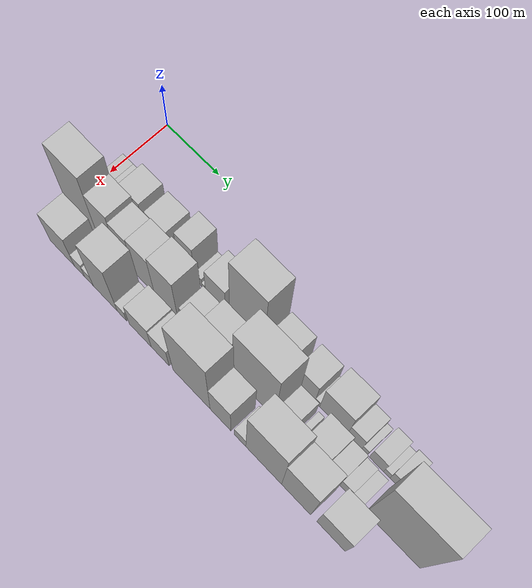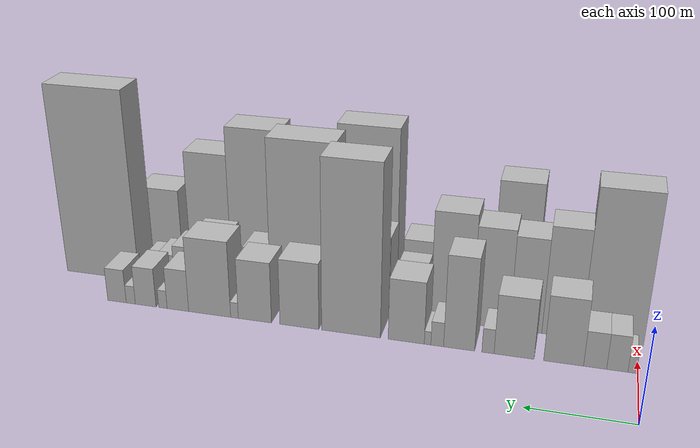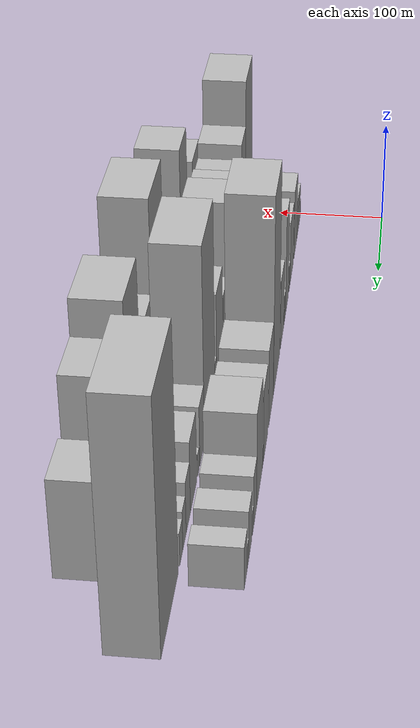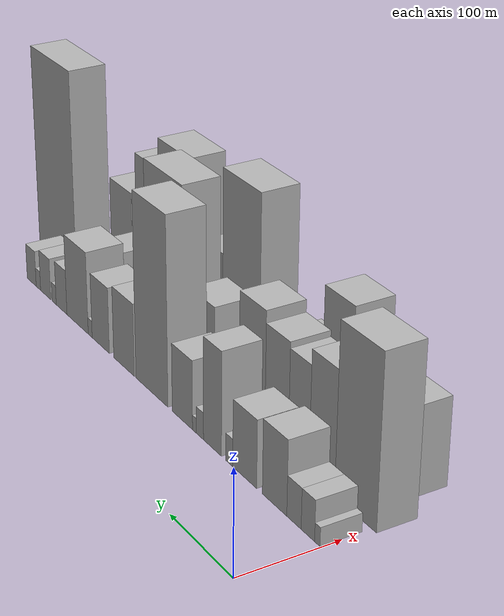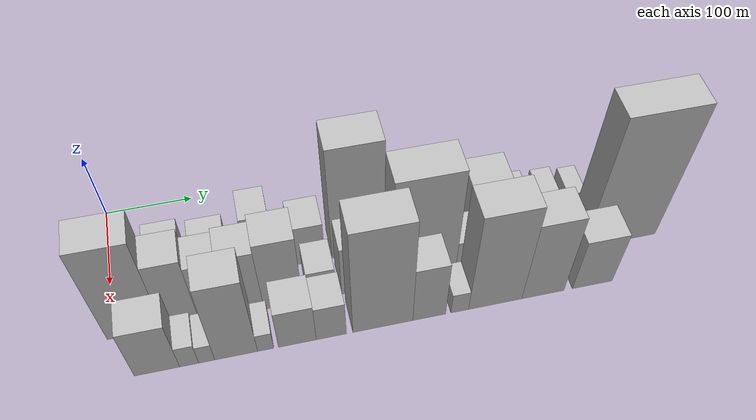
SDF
<sdf version="1.6">
 <world name="default">
  <model name="building_19">
   <static>1</static>
   <pose>100.0000 5.1420 0 0.000000 0.000000 0.000000</pose>
   <link name="link">
    <pose>0 0 9.00 0 0 0</pose>
    <collision name="collision"><geometry><box><size>40.0000 7.8285 18.0000</size></box></geometry></collision>
    <visual name="visual">
     <cast_shadows>0</cast_shadows>
     <geometry><box><size>40.0000 7.8285 18.0000</size></box></geometry>
     <material>
      <script>
       <uri>model://HANNAS_wall/materials/scripts</uri>
       <uri>model://HANNAS_wall/materials/textures</uri>
       <name>vrc/HANNAS_wall</name>
      </script>
     </material>
    </visual>
   </link>
  </model>
  <model name="building_20">
   <static>1</static>
   <pose>100.0000 18.8325 0 0.000000 0.000000 0.000000</pose>
   <link name="link">
    <pose>0 0 19.50 0 0 0</pose>
    <collision name="collision"><geometry><box><size>40.0000 19.5526 39.0000</size></box></geometry></collision>
    <visual name="visual">
     <cast_shadows>0</cast_shadows>
     <geometry><box><size>40.0000 19.5526 39.0000</size></box></geometry>
     <material>
      <script>
       <uri>model://HANNAS_wall/materials/scripts</uri>
       <uri>model://HANNAS_wall/materials/textures</uri>
       <name>vrc/HANNAS_wall</name>
      </script>
     </material>
    </visual>
   </link>
  </model>
  <model name="building_21">
   <static>1</static>
   <pose>100.0000 39.2823 0 0.000000 0.000000 0.000000</pose>
   <link name="link">
    <pose>0 0 19.50 0 0 0</pose>
    <collision name="collision"><geometry><box><size>40.0000 21.3469 39.0000</size></box></geometry></collision>
    <visual name="visual">
     <cast_shadows>0</cast_shadows>
     <geometry><box><size>40.0000 21.3469 39.0000</size></box></geometry>
     <material>
      <script>
       <uri>model://HANNAS_wall/materials/scripts</uri>
       <uri>model://HANNAS_wall/materials/textures</uri>
       <name>vrc/HANNAS_wall</name>
      </script>
     </material>
    </visual>
   </link>
  </model>
  <model name="building_22">
   <static>1</static>
   <pose>100.0000 68.7046 0 0.000000 0.000000 0.000000</pose>
   <link name="link">
    <pose>0 0 36.00 0 0 0</pose>
    <collision name="collision"><geometry><box><size>40.0000 37.4976 72.0000</size></box></geometry></collision>
    <visual name="visual">
     <cast_shadows>0</cast_shadows>
     <geometry><box><size>40.0000 37.4976 72.0000</size></box></geometry>
     <material>
      <script>
       <uri>model://HANNAS_wall/materials/scripts</uri>
       <uri>model://HANNAS_wall/materials/textures</uri>
       <name>vrc/HANNAS_wall</name>
      </script>
     </material>
    </visual>
   </link>
  </model>
  <model name="building_23">
   <static>1</static>
   <pose>100.0000 115.7143 0 0.000000 0.000000 0.000000</pose>
   <link name="link">
    <pose>0 0 33.00 0 0 0</pose>
    <collision name="collision"><geometry><box><size>40.0000 38.5218 66.0000</size></box></geometry></collision>
    <visual name="visual">
     <cast_shadows>0</cast_shadows>
     <geometry><box><size>40.0000 38.5218 66.0000</size></box></geometry>
     <material>
      <script>
       <uri>model://HANNAS_wall/materials/scripts</uri>
       <uri>model://HANNAS_wall/materials/textures</uri>
       <name>vrc/HANNAS_wall</name>
      </script>
     </material>
    </visual>
   </link>
  </model>
  <model name="building_24">
   <static>1</static>
   <pose>100.0000 140.9108 0 0.000000 0.000000 0.000000</pose>
   <link name="link">
    <pose>0 0 13.50 0 0 0</pose>
    <collision name="collision"><geometry><box><size>40.0000 11.8714 27.0000</size></box></geometry></collision>
    <visual name="visual">
     <cast_shadows>0</cast_shadows>
     <geometry><box><size>40.0000 11.8714 27.0000</size></box></geometry>
     <material>
      <script>
       <uri>model://HANNAS_wall/materials/scripts</uri>
       <uri>model://HANNAS_wall/materials/textures</uri>
       <name>vrc/HANNAS_wall</name>
      </script>
     </material>
    </visual>
   </link>
  </model>
  <model name="building_25">
   <static>1</static>
   <pose>100.0000 169.1480 0 0.000000 0.000000 0.000000</pose>
   <link name="link">
    <pose>0 0 51.00 0 0 0</pose>
    <collision name="collision"><geometry><box><size>40.0000 30.6031 102.0000</size></box></geometry></collision>
    <visual name="visual">
     <cast_shadows>0</cast_shadows>
     <geometry><box><size>40.0000 30.6031 102.0000</size></box></geometry>
     <material>
      <script>
       <uri>model://HANNAS_wall/materials/scripts</uri>
       <uri>model://HANNAS_wall/materials/textures</uri>
       <name>vrc/HANNAS_wall</name>
      </script>
     </material>
    </visual>
   </link>
  </model>
  <model name="building_26">
   <static>1</static>
   <pose>100.0000 190.7650 0 0.000000 0.000000 0.000000</pose>
   <link name="link">
    <pose>0 0 13.50 0 0 0</pose>
    <collision name="collision"><geometry><box><size>40.0000 12.6308 27.0000</size></box></geometry></collision>
    <visual name="visual">
     <cast_shadows>0</cast_shadows>
     <geometry><box><size>40.0000 12.6308 27.0000</size></box></geometry>
     <material>
      <script>
       <uri>model://HANNAS_wall/materials/scripts</uri>
       <uri>model://HANNAS_wall/materials/textures</uri>
       <name>vrc/HANNAS_wall</name>
      </script>
     </material>
    </visual>
   </link>
  </model>
  <model name="building_27">
   <static>1</static>
   <pose>100.0000 200.3613 0 0.000000 0.000000 0.000000</pose>
   <link name="link">
    <pose>0 0 7.50 0 0 0</pose>
    <collision name="collision"><geometry><box><size>40.0000 6.5619 15.0000</size></box></geometry></collision>
    <visual name="visual">
     <cast_shadows>0</cast_shadows>
     <geometry><box><size>40.0000 6.5619 15.0000</size></box></geometry>
     <material>
      <script>
       <uri>model://HANNAS_wall/materials/scripts</uri>
       <uri>model://HANNAS_wall/materials/textures</uri>
       <name>vrc/HANNAS_wall</name>
      </script>
     </material>
    </visual>
   </link>
  </model>
  <model name="building_28">
   <static>1</static>
   <pose>100.0000 221.8432 0 0.000000 0.000000 0.000000</pose>
   <link name="link">
    <pose>0 0 34.50 0 0 0</pose>
    <collision name="collision"><geometry><box><size>40.0000 36.4018 69.0000</size></box></geometry></collision>
    <visual name="visual">
     <cast_shadows>0</cast_shadows>
     <geometry><box><size>40.0000 36.4018 69.0000</size></box></geometry>
     <material>
      <script>
       <uri>model://HANNAS_wall/materials/scripts</uri>
       <uri>model://HANNAS_wall/materials/textures</uri>
       <name>vrc/HANNAS_wall</name>
      </script>
     </material>
    </visual>
   </link>
  </model>
  <model name="building_29">
   <static>1</static>
   <pose>100.0000 278.4300 0 0.000000 0.000000 0.000000</pose>
   <link name="link">
    <pose>0 0 94.50 0 0 0</pose>
    <collision name="collision"><geometry><box><size>40.0000 60.7719 189.0000</size></box></geometry></collision>
    <visual name="visual">
     <cast_shadows>0</cast_shadows>
     <geometry><box><size>40.0000 60.7719 189.0000</size></box></geometry>
     <material>
      <script>
       <uri>model://HANNAS_wall/materials/scripts</uri>
       <uri>model://HANNAS_wall/materials/textures</uri>
       <name>vrc/HANNAS_wall</name>
      </script>
     </material>
    </visual>
   </link>
  </model>
  <model name="building_30">
   <static>1</static>
   <pose>100.0000 332.4769 0 0.000000 0.000000 0.000000</pose>
   <link name="link">
    <pose>0 0 37.50 0 0 0</pose>
    <collision name="collision"><geometry><box><size>40.0000 41.3220 75.0000</size></box></geometry></collision>
    <visual name="visual">
     <cast_shadows>0</cast_shadows>
     <geometry><box><size>40.0000 41.3220 75.0000</size></box></geometry>
     <material>
      <script>
       <uri>model://HANNAS_wall/materials/scripts</uri>
       <uri>model://HANNAS_wall/materials/textures</uri>
       <name>vrc/HANNAS_wall</name>
      </script>
     </material>
    </visual>
   </link>
  </model>
  <model name="building_31">
   <static>1</static>
   <pose>100.0000 380.1412 0 0.000000 0.000000 0.000000</pose>
   <link name="link">
    <pose>0 0 34.50 0 0 0</pose>
    <collision name="collision"><geometry><box><size>40.0000 36.0065 69.0000</size></box></geometry></collision>
    <visual name="visual">
     <cast_shadows>0</cast_shadows>
     <geometry><box><size>40.0000 36.0065 69.0000</size></box></geometry>
     <material>
      <script>
       <uri>model://HANNAS_wall/materials/scripts</uri>
       <uri>model://HANNAS_wall/materials/textures</uri>
       <name>vrc/HANNAS_wall</name>
      </script>
     </material>
    </visual>
   </link>
  </model>
  <model name="building_32">
   <static>1</static>
   <pose>100.0000 402.3121 0 0.000000 0.000000 0.000000</pose>
   <link name="link">
    <pose>0 0 9.00 0 0 0</pose>
    <collision name="collision"><geometry><box><size>40.0000 8.3354 18.0000</size></box></geometry></collision>
    <visual name="visual">
     <cast_shadows>0</cast_shadows>
     <geometry><box><size>40.0000 8.3354 18.0000</size></box></geometry>
     <material>
      <script>
       <uri>model://HANNAS_wall/materials/scripts</uri>
       <uri>model://HANNAS_wall/materials/textures</uri>
       <name>vrc/HANNAS_wall</name>
      </script>
     </material>
    </visual>
   </link>
  </model>
  <model name="building_33">
   <static>1</static>
   <pose>100.0000 429.7398 0 0.000000 0.000000 0.000000</pose>
   <link name="link">
    <pose>0 0 43.50 0 0 0</pose>
    <collision name="collision"><geometry><box><size>40.0000 46.5200 87.0000</size></box></geometry></collision>
    <visual name="visual">
     <cast_shadows>0</cast_shadows>
     <geometry><box><size>40.0000 46.5200 87.0000</size></box></geometry>
     <material>
      <script>
       <uri>model://HANNAS_wall/materials/scripts</uri>
       <uri>model://HANNAS_wall/materials/textures</uri>
       <name>vrc/HANNAS_wall</name>
      </script>
     </material>
    </visual>
   </link>
  </model>
  <model name="building_34">
   <static>1</static>
   <pose>100.0000 465.1372 0 0.000000 0.000000 0.000000</pose>
   <link name="link">
    <pose>0 0 24.00 0 0 0</pose>
    <collision name="collision"><geometry><box><size>40.0000 24.2748 48.0000</size></box></geometry></collision>
    <visual name="visual">
     <cast_shadows>0</cast_shadows>
     <geometry><box><size>40.0000 24.2748 48.0000</size></box></geometry>
     <material>
      <script>
       <uri>model://HANNAS_wall/materials/scripts</uri>
       <uri>model://HANNAS_wall/materials/textures</uri>
       <name>vrc/HANNAS_wall</name>
      </script>
     </material>
    </visual>
   </link>
  </model>
  <model name="building_35">
   <static>1</static>
   <pose>100.0000 482.0341 0 0.000000 0.000000 0.000000</pose>
   <link name="link">
    <pose>0 0 10.50 0 0 0</pose>
    <collision name="collision"><geometry><box><size>40.0000 9.5189 21.0000</size></box></geometry></collision>
    <visual name="visual">
     <cast_shadows>0</cast_shadows>
     <geometry><box><size>40.0000 9.5189 21.0000</size></box></geometry>
     <material>
      <script>
       <uri>model://HANNAS_wall/materials/scripts</uri>
       <uri>model://HANNAS_wall/materials/textures</uri>
       <name>vrc/HANNAS_wall</name>
      </script>
     </material>
    </visual>
   </link>
  </model>
  <model name="building_36">
   <static>1</static>
   <pose>100.0000 501.6301 0 0.000000 0.000000 0.000000</pose>
   <link name="link">
    <pose>0 0 22.50 0 0 0</pose>
    <collision name="collision"><geometry><box><size>40.0000 23.6731 45.0000</size></box></geometry></collision>
    <visual name="visual">
     <cast_shadows>0</cast_shadows>
     <geometry><box><size>40.0000 23.6731 45.0000</size></box></geometry>
     <material>
      <script>
       <uri>model://HANNAS_wall/materials/scripts</uri>
       <uri>model://HANNAS_wall/materials/textures</uri>
       <name>vrc/HANNAS_wall</name>
      </script>
     </material>
    </visual>
   </link>
  </model>
  <model name="building_37">
   <static>1</static>
   <pose>100.0000 518.7028 0 0.000000 0.000000 0.000000</pose>
   <link name="link">
    <pose>0 0 10.50 0 0 0</pose>
    <collision name="collision"><geometry><box><size>40.0000 10.4723 21.0000</size></box></geometry></collision>
    <visual name="visual">
     <cast_shadows>0</cast_shadows>
     <geometry><box><size>40.0000 10.4723 21.0000</size></box></geometry>
     <material>
      <script>
       <uri>model://HANNAS_wall/materials/scripts</uri>
       <uri>model://HANNAS_wall/materials/textures</uri>
       <name>vrc/HANNAS_wall</name>
      </script>
     </material>
    </visual>
   </link>
  </model>
  <model name="building_38">
   <static>1</static>
   <pose>100.0000 534.6236 0 0.000000 0.000000 0.000000</pose>
   <link name="link">
    <pose>0 0 19.50 0 0 0</pose>
    <collision name="collision"><geometry><box><size>40.0000 21.3694 39.0000</size></box></geometry></collision>
    <visual name="visual">
     <cast_shadows>0</cast_shadows>
     <geometry><box><size>40.0000 21.3694 39.0000</size></box></geometry>
     <material>
      <script>
       <uri>model://HANNAS_wall/materials/scripts</uri>
       <uri>model://HANNAS_wall/materials/textures</uri>
       <name>vrc/HANNAS_wall</name>
      </script>
     </material>
    </visual>
   </link>
  </model>
  <model name="building_53">
   <static>1</static>
   <pose>149.0000 24.1453 0 0.000000 0.000000 0.000000</pose>
   <link name="link">
    <pose>0 0 82.50 0 0 0</pose>
    <collision name="collision"><geometry><box><size>40.0000 59.8403 165.0000</size></box></geometry></collision>
    <visual name="visual">
     <cast_shadows>0</cast_shadows>
     <geometry><box><size>40.0000 59.8403 165.0000</size></box></geometry>
     <material>
      <script>
       <uri>model://HANNAS_wall/materials/scripts</uri>
       <uri>model://HANNAS_wall/materials/textures</uri>
       <name>vrc/HANNAS_wall</name>
      </script>
     </material>
    </visual>
   </link>
  </model>
  <model name="building_54">
   <static>1</static>
   <pose>149.0000 73.3788 0 0.000000 0.000000 0.000000</pose>
   <link name="link">
    <pose>0 0 60.00 0 0 0</pose>
    <collision name="collision"><geometry><box><size>40.0000 38.6266 120.0000</size></box></geometry></collision>
    <visual name="visual">
     <cast_shadows>0</cast_shadows>
     <geometry><box><size>40.0000 38.6266 120.0000</size></box></geometry>
     <material>
      <script>
       <uri>model://HANNAS_wall/materials/scripts</uri>
       <uri>model://HANNAS_wall/materials/textures</uri>
       <name>vrc/HANNAS_wall</name>
      </script>
     </material>
    </visual>
   </link>
  </model>
  <model name="building_55">
   <static>1</static>
   <pose>149.0000 108.8950 0 0.000000 0.000000 0.000000</pose>
   <link name="link">
    <pose>0 0 52.50 0 0 0</pose>
    <collision name="collision"><geometry><box><size>40.0000 32.4059 105.0000</size></box></geometry></collision>
    <visual name="visual">
     <cast_shadows>0</cast_shadows>
     <geometry><box><size>40.0000 32.4059 105.0000</size></box></geometry>
     <material>
      <script>
       <uri>model://HANNAS_wall/materials/scripts</uri>
       <uri>model://HANNAS_wall/materials/textures</uri>
       <name>vrc/HANNAS_wall</name>
      </script>
     </material>
    </visual>
   </link>
  </model>
  <model name="building_56">
   <static>1</static>
   <pose>149.0000 144.0499 0 0.000000 0.000000 0.000000</pose>
   <link name="link">
    <pose>0 0 55.50 0 0 0</pose>
    <collision name="collision"><geometry><box><size>40.0000 37.9039 111.0000</size></box></geometry></collision>
    <visual name="visual">
     <cast_shadows>0</cast_shadows>
     <geometry><box><size>40.0000 37.9039 111.0000</size></box></geometry>
     <material>
      <script>
       <uri>model://HANNAS_wall/materials/scripts</uri>
       <uri>model://HANNAS_wall/materials/textures</uri>
       <name>vrc/HANNAS_wall</name>
      </script>
     </material>
    </visual>
   </link>
  </model>
  <model name="building_57">
   <static>1</static>
   <pose>149.0000 184.5599 0 0.000000 0.000000 0.000000</pose>
   <link name="link">
    <pose>0 0 61.50 0 0 0</pose>
    <collision name="collision"><geometry><box><size>40.0000 43.1160 123.0000</size></box></geometry></collision>
    <visual name="visual">
     <cast_shadows>0</cast_shadows>
     <geometry><box><size>40.0000 43.1160 123.0000</size></box></geometry>
     <material>
      <script>
       <uri>model://HANNAS_wall/materials/scripts</uri>
       <uri>model://HANNAS_wall/materials/textures</uri>
       <name>vrc/HANNAS_wall</name>
      </script>
     </material>
    </visual>
   </link>
  </model>
  <model name="building_58">
   <static>1</static>
   <pose>149.0000 227.6423 0 0.000000 0.000000 0.000000</pose>
   <link name="link">
    <pose>0 0 27.00 0 0 0</pose>
    <collision name="collision"><geometry><box><size>40.0000 31.0489 54.0000</size></box></geometry></collision>
    <visual name="visual">
     <cast_shadows>0</cast_shadows>
     <geometry><box><size>40.0000 31.0489 54.0000</size></box></geometry>
     <material>
      <script>
       <uri>model://HANNAS_wall/materials/scripts</uri>
       <uri>model://HANNAS_wall/materials/textures</uri>
       <name>vrc/HANNAS_wall</name>
      </script>
     </material>
    </visual>
   </link>
  </model>
  <model name="building_59">
   <static>1</static>
   <pose>149.0000 272.0626 0 0.000000 0.000000 0.000000</pose>
   <link name="link">
    <pose>0 0 43.50 0 0 0</pose>
    <collision name="collision"><geometry><box><size>40.0000 45.7917 87.0000</size></box></geometry></collision>
    <visual name="visual">
     <cast_shadows>0</cast_shadows>
     <geometry><box><size>40.0000 45.7917 87.0000</size></box></geometry>
     <material>
      <script>
       <uri>model://HANNAS_wall/materials/scripts</uri>
       <uri>model://HANNAS_wall/materials/textures</uri>
       <name>vrc/HANNAS_wall</name>
      </script>
     </material>
    </visual>
   </link>
  </model>
  <model name="building_60">
   <static>1</static>
   <pose>149.0000 300.8879 0 0.000000 0.000000 0.000000</pose>
   <link name="link">
    <pose>0 0 13.50 0 0 0</pose>
    <collision name="collision"><geometry><box><size>40.0000 11.8588 27.0000</size></box></geometry></collision>
    <visual name="visual">
     <cast_shadows>0</cast_shadows>
     <geometry><box><size>40.0000 11.8588 27.0000</size></box></geometry>
     <material>
      <script>
       <uri>model://HANNAS_wall/materials/scripts</uri>
       <uri>model://HANNAS_wall/materials/textures</uri>
       <name>vrc/HANNAS_wall</name>
      </script>
     </material>
    </visual>
   </link>
  </model>
  <model name="building_61">
   <static>1</static>
   <pose>149.0000 343.0089 0 0.000000 0.000000 0.000000</pose>
   <link name="link">
    <pose>0 0 91.50 0 0 0</pose>
    <collision name="collision"><geometry><box><size>40.0000 72.3832 183.0000</size></box></geometry></collision>
    <visual name="visual">
     <cast_shadows>0</cast_shadows>
     <geometry><box><size>40.0000 72.3832 183.0000</size></box></geometry>
     <material>
      <script>
       <uri>model://HANNAS_wall/materials/scripts</uri>
       <uri>model://HANNAS_wall/materials/textures</uri>
       <name>vrc/HANNAS_wall</name>
      </script>
     </material>
    </visual>
   </link>
  </model>
  <model name="building_62">
   <static>1</static>
   <pose>149.0000 393.9358 0 0.000000 0.000000 0.000000</pose>
   <link name="link">
    <pose>0 0 28.50 0 0 0</pose>
    <collision name="collision"><geometry><box><size>40.0000 29.4706 57.0000</size></box></geometry></collision>
    <visual name="visual">
     <cast_shadows>0</cast_shadows>
     <geometry><box><size>40.0000 29.4706 57.0000</size></box></geometry>
     <material>
      <script>
       <uri>model://HANNAS_wall/materials/scripts</uri>
       <uri>model://HANNAS_wall/materials/textures</uri>
       <name>vrc/HANNAS_wall</name>
      </script>
     </material>
    </visual>
   </link>
  </model>
  <model name="building_63">
   <static>1</static>
   <pose>149.0000 416.5740 0 0.000000 0.000000 0.000000</pose>
   <link name="link">
    <pose>0 0 10.50 0 0 0</pose>
    <collision name="collision"><geometry><box><size>40.0000 9.8058 21.0000</size></box></geometry></collision>
    <visual name="visual">
     <cast_shadows>0</cast_shadows>
     <geometry><box><size>40.0000 9.8058 21.0000</size></box></geometry>
     <material>
      <script>
       <uri>model://HANNAS_wall/materials/scripts</uri>
       <uri>model://HANNAS_wall/materials/textures</uri>
       <name>vrc/HANNAS_wall</name>
      </script>
     </material>
    </visual>
   </link>
  </model>
  <model name="building_64">
   <static>1</static>
   <pose>149.0000 445.6894 0 0.000000 0.000000 0.000000</pose>
   <link name="link">
    <pose>0 0 33.00 0 0 0</pose>
    <collision name="collision"><geometry><box><size>40.0000 38.4249 66.0000</size></box></geometry></collision>
    <visual name="visual">
     <cast_shadows>0</cast_shadows>
     <geometry><box><size>40.0000 38.4249 66.0000</size></box></geometry>
     <material>
      <script>
       <uri>model://HANNAS_wall/materials/scripts</uri>
       <uri>model://HANNAS_wall/materials/textures</uri>
       <name>vrc/HANNAS_wall</name>
      </script>
     </material>
    </visual>
   </link>
  </model>
  <model name="building_65">
   <static>1</static>
   <pose>149.0000 477.2023 0 0.000000 0.000000 0.000000</pose>
   <link name="link">
    <pose>0 0 24.00 0 0 0</pose>
    <collision name="collision"><geometry><box><size>40.0000 24.6009 48.0000</size></box></geometry></collision>
    <visual name="visual">
     <cast_shadows>0</cast_shadows>
     <geometry><box><size>40.0000 24.6009 48.0000</size></box></geometry>
     <material>
      <script>
       <uri>model://HANNAS_wall/materials/scripts</uri>
       <uri>model://HANNAS_wall/materials/textures</uri>
       <name>vrc/HANNAS_wall</name>
      </script>
     </material>
    </visual>
   </link>
  </model>
  <model name="building_66">
   <static>1</static>
   <pose>149.0000 498.6786 0 0.000000 0.000000 0.000000</pose>
   <link name="link">
    <pose>0 0 18.00 0 0 0</pose>
    <collision name="collision"><geometry><box><size>40.0000 18.3516 36.0000</size></box></geometry></collision>
    <visual name="visual">
     <cast_shadows>0</cast_shadows>
     <geometry><box><size>40.0000 18.3516 36.0000</size></box></geometry>
     <material>
      <script>
       <uri>model://HANNAS_wall/materials/scripts</uri>
       <uri>model://HANNAS_wall/materials/textures</uri>
       <name>vrc/HANNAS_wall</name>
      </script>
     </material>
    </visual>
   </link>
  </model>
  <model name="building_67">
   <static>1</static>
   <pose>149.0000 516.3742 0 0.000000 0.000000 0.000000</pose>
   <link name="link">
    <pose>0 0 15.00 0 0 0</pose>
    <collision name="collision"><geometry><box><size>40.0000 17.0397 30.0000</size></box></geometry></collision>
    <visual name="visual">
     <cast_shadows>0</cast_shadows>
     <geometry><box><size>40.0000 17.0397 30.0000</size></box></geometry>
     <material>
      <script>
       <uri>model://HANNAS_wall/materials/scripts</uri>
       <uri>model://HANNAS_wall/materials/textures</uri>
       <name>vrc/HANNAS_wall</name>
      </script>
     </material>
    </visual>
   </link>
  </model>
  <model name="building_68">
   <static>1</static>
   <pose>149.0000 575.5904 0 0.000000 0.000000 0.000000</pose>
   <link name="link">
    <pose>0 0 109.50 0 0 0</pose>
    <collision name="collision"><geometry><box><size>40.0000 87.3926 219.0000</size></box></geometry></collision>
    <visual name="visual">
     <cast_shadows>0</cast_shadows>
     <geometry><box><size>40.0000 87.3926 219.0000</size></box></geometry>
     <material>
      <script>
       <uri>model://HANNAS_wall/materials/scripts</uri>
       <uri>model://HANNAS_wall/materials/textures</uri>
       <name>vrc/HANNAS_wall</name>
      </script>
     </material>
    </visual>
   </link>
  </model>
  <model name="building_85">
   <static>1</static>
   <pose>198.0000 43.3608 0 0.000000 0.000000 0.000000</pose>
   <link name="link">
    <pose>0 0 43.50 0 0 0</pose>
    <collision name="collision"><geometry><box><size>40.0000 46.8811 87.0000</size></box></geometry></collision>
    <visual name="visual">
     <cast_shadows>0</cast_shadows>
     <geometry><box><size>40.0000 46.8811 87.0000</size></box></geometry>
     <material>
      <script>
       <uri>model://HANNAS_wall/materials/scripts</uri>
       <uri>model://HANNAS_wall/materials/textures</uri>
       <name>vrc/HANNAS_wall</name>
      </script>
     </material>
    </visual>
   </link>
  </model>
  <model name="building_86">
   <static>1</static>
   <pose>198.0000 76.7379 0 0.000000 0.000000 0.000000</pose>
   <link name="link">
    <pose>0 0 19.50 0 0 0</pose>
    <collision name="collision"><geometry><box><size>40.0000 19.8730 39.0000</size></box></geometry></collision>
    <visual name="visual">
     <cast_shadows>0</cast_shadows>
     <geometry><box><size>40.0000 19.8730 39.0000</size></box></geometry>
     <material>
      <script>
       <uri>model://HANNAS_wall/materials/scripts</uri>
       <uri>model://HANNAS_wall/materials/textures</uri>
       <name>vrc/HANNAS_wall</name>
      </script>
     </material>
    </visual>
   </link>
  </model>
  <model name="building_87">
   <static>1</static>
   <pose>198.0000 95.0584 0 0.000000 0.000000 0.000000</pose>
   <link name="link">
    <pose>0 0 16.50 0 0 0</pose>
    <collision name="collision"><geometry><box><size>40.0000 16.7680 33.0000</size></box></geometry></collision>
    <visual name="visual">
     <cast_shadows>0</cast_shadows>
     <geometry><box><size>40.0000 16.7680 33.0000</size></box></geometry>
     <material>
      <script>
       <uri>model://HANNAS_wall/materials/scripts</uri>
       <uri>model://HANNAS_wall/materials/textures</uri>
       <name>vrc/HANNAS_wall</name>
      </script>
     </material>
    </visual>
   </link>
  </model>
  <model name="building_88">
   <static>1</static>
   <pose>198.0000 126.1890 0 0.000000 0.000000 0.000000</pose>
   <link name="link">
    <pose>0 0 70.50 0 0 0</pose>
    <collision name="collision"><geometry><box><size>40.0000 45.4932 141.0000</size></box></geometry></collision>
    <visual name="visual">
     <cast_shadows>0</cast_shadows>
     <geometry><box><size>40.0000 45.4932 141.0000</size></box></geometry>
     <material>
      <script>
       <uri>model://HANNAS_wall/materials/scripts</uri>
       <uri>model://HANNAS_wall/materials/textures</uri>
       <name>vrc/HANNAS_wall</name>
      </script>
     </material>
    </visual>
   </link>
  </model>
  <model name="building_89">
   <static>1</static>
   <pose>198.0000 157.5503 0 0.000000 0.000000 0.000000</pose>
   <link name="link">
    <pose>0 0 16.50 0 0 0</pose>
    <collision name="collision"><geometry><box><size>40.0000 17.2294 33.0000</size></box></geometry></collision>
    <visual name="visual">
     <cast_shadows>0</cast_shadows>
     <geometry><box><size>40.0000 17.2294 33.0000</size></box></geometry>
     <material>
      <script>
       <uri>model://HANNAS_wall/materials/scripts</uri>
       <uri>model://HANNAS_wall/materials/textures</uri>
       <name>vrc/HANNAS_wall</name>
      </script>
     </material>
    </visual>
   </link>
  </model>
  <model name="building_90">
   <static>1</static>
   <pose>198.0000 191.5500 0 0.000000 0.000000 0.000000</pose>
   <link name="link">
    <pose>0 0 34.50 0 0 0</pose>
    <collision name="collision"><geometry><box><size>40.0000 40.7699 69.0000</size></box></geometry></collision>
    <visual name="visual">
     <cast_shadows>0</cast_shadows>
     <geometry><box><size>40.0000 40.7699 69.0000</size></box></geometry>
     <material>
      <script>
       <uri>model://HANNAS_wall/materials/scripts</uri>
       <uri>model://HANNAS_wall/materials/textures</uri>
       <name>vrc/HANNAS_wall</name>
      </script>
     </material>
    </visual>
   </link>
  </model>
  <model name="building_91">
   <static>1</static>
   <pose>198.0000 228.3028 0 0.000000 0.000000 0.000000</pose>
   <link name="link">
    <pose>0 0 31.50 0 0 0</pose>
    <collision name="collision"><geometry><box><size>40.0000 32.7358 63.0000</size></box></geometry></collision>
    <visual name="visual">
     <cast_shadows>0</cast_shadows>
     <geometry><box><size>40.0000 32.7358 63.0000</size></box></geometry>
     <material>
      <script>
       <uri>model://HANNAS_wall/materials/scripts</uri>
       <uri>model://HANNAS_wall/materials/textures</uri>
       <name>vrc/HANNAS_wall</name>
      </script>
     </material>
    </visual>
   </link>
  </model>
  <model name="building_92">
   <static>1</static>
   <pose>198.0000 284.8194 0 0.000000 0.000000 0.000000</pose>
   <link name="link">
    <pose>0 0 93.00 0 0 0</pose>
    <collision name="collision"><geometry><box><size>40.0000 66.2974 186.0000</size></box></geometry></collision>
    <visual name="visual">
     <cast_shadows>0</cast_shadows>
     <geometry><box><size>40.0000 66.2974 186.0000</size></box></geometry>
     <material>
      <script>
       <uri>model://HANNAS_wall/materials/scripts</uri>
       <uri>model://HANNAS_wall/materials/textures</uri>
       <name>vrc/HANNAS_wall</name>
      </script>
     </material>
    </visual>
   </link>
  </model>
  <model name="building_93">
   <static>1</static>
   <pose>198.0000 336.3163 0 0.000000 0.000000 0.000000</pose>
   <link name="link">
    <pose>0 0 49.50 0 0 0</pose>
    <collision name="collision"><geometry><box><size>40.0000 36.6966 99.0000</size></box></geometry></collision>
    <visual name="visual">
     <cast_shadows>0</cast_shadows>
     <geometry><box><size>40.0000 36.6966 99.0000</size></box></geometry>
     <material>
      <script>
       <uri>model://HANNAS_wall/materials/scripts</uri>
       <uri>model://HANNAS_wall/materials/textures</uri>
       <name>vrc/HANNAS_wall</name>
      </script>
     </material>
    </visual>
   </link>
  </model>
  <model name="building_94">
   <static>1</static>
   <pose>198.0000 370.6206 0 0.000000 0.000000 0.000000</pose>
   <link name="link">
    <pose>0 0 18.00 0 0 0</pose>
    <collision name="collision"><geometry><box><size>40.0000 19.9119 36.0000</size></box></geometry></collision>
    <visual name="visual">
     <cast_shadows>0</cast_shadows>
     <geometry><box><size>40.0000 19.9119 36.0000</size></box></geometry>
     <material>
      <script>
       <uri>model://HANNAS_wall/materials/scripts</uri>
       <uri>model://HANNAS_wall/materials/textures</uri>
       <name>vrc/HANNAS_wall</name>
      </script>
     </material>
    </visual>
   </link>
  </model>
  <model name="building_95">
   <static>1</static>
   <pose>198.0000 411.0829 0 0.000000 0.000000 0.000000</pose>
   <link name="link">
    <pose>0 0 85.50 0 0 0</pose>
    <collision name="collision"><geometry><box><size>40.0000 61.0126 171.0000</size></box></geometry></collision>
    <visual name="visual">
     <cast_shadows>0</cast_shadows>
     <geometry><box><size>40.0000 61.0126 171.0000</size></box></geometry>
     <material>
      <script>
       <uri>model://HANNAS_wall/materials/scripts</uri>
       <uri>model://HANNAS_wall/materials/textures</uri>
       <name>vrc/HANNAS_wall</name>
      </script>
     </material>
    </visual>
   </link>
  </model>
  <model name="building_96">
   <static>1</static>
   <pose>198.0000 465.9811 0 0.000000 0.000000 0.000000</pose>
   <link name="link">
    <pose>0 0 69.00 0 0 0</pose>
    <collision name="collision"><geometry><box><size>40.0000 48.7837 138.0000</size></box></geometry></collision>
    <visual name="visual">
     <cast_shadows>0</cast_shadows>
     <geometry><box><size>40.0000 48.7837 138.0000</size></box></geometry>
     <material>
      <script>
       <uri>model://HANNAS_wall/materials/scripts</uri>
       <uri>model://HANNAS_wall/materials/textures</uri>
       <name>vrc/HANNAS_wall</name>
      </script>
     </material>
    </visual>
   </link>
  </model>
  <model name="building_97">
   <static>1</static>
   <pose>198.0000 523.7906 0 0.000000 0.000000 0.000000</pose>
   <link name="link">
    <pose>0 0 45.00 0 0 0</pose>
    <collision name="collision"><geometry><box><size>40.0000 46.8353 90.0000</size></box></geometry></collision>
    <visual name="visual">
     <cast_shadows>0</cast_shadows>
     <geometry><box><size>40.0000 46.8353 90.0000</size></box></geometry>
     <material>
      <script>
       <uri>model://HANNAS_wall/materials/scripts</uri>
       <uri>model://HANNAS_wall/materials/textures</uri>
       <name>vrc/HANNAS_wall</name>
      </script>
     </material>
    </visual>
   </link>
  </model>
 </world>
</sdf>
